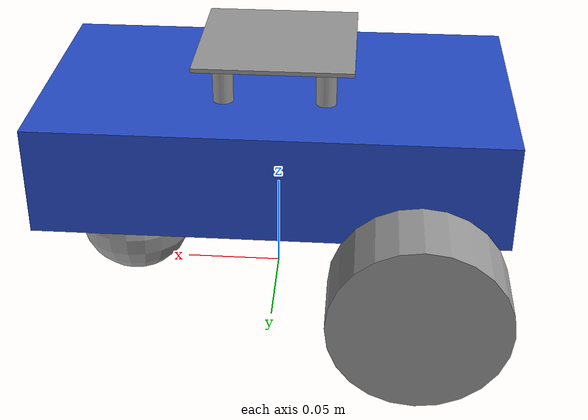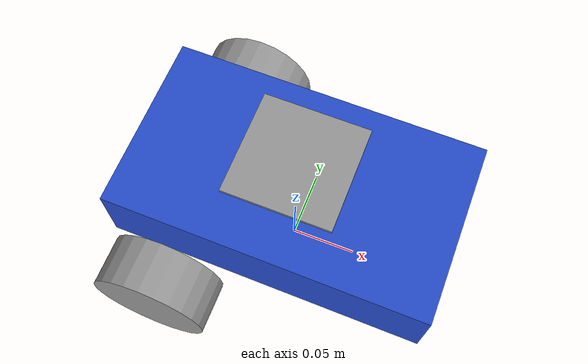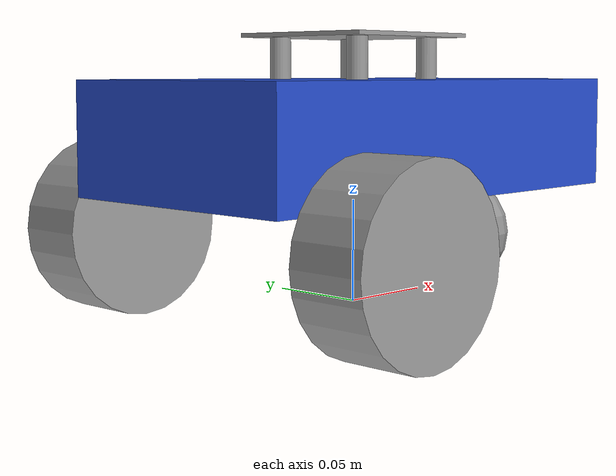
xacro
<?xml version="1.0"?>
<robot xmlns:xacro="http://www.ros.org/wiki/xacro">

    <xacro:property name="base_length" value="0.231" />
    <xacro:property name="base_width" value="0.131" />
    <xacro:property name="base_height" value="0.054" />
    <xacro:property name="wheel_radius" value="0.043" />
    <xacro:property name="wheel_length" value="0.037" />
    <xacro:property name="caster_wheel_radius" value="0.0305" />

    <link name="base_footprint" />

    <link name="base_link">
        <visual>
            <geometry>
                <box size="${base_length} ${base_width} ${base_height}" />
            </geometry>01
            <origin xyz="0 0 ${base_height / 2.0}" rpy="0 0 0" />
            <material name="blue" />
        </visual>
        <collision>
            <geometry>
                <box size="${base_length} ${base_width} ${base_height}" />
            </geometry>
            <origin xyz="0 0 ${base_height / 2.0}" rpy="0 0 0" />
        </collision>
        <xacro:box_inertia m="5.0" x="${base_length}" y="${base_width}" z="${base_height}"
                           o_xyz="0 0 ${base_height / 2.0}" o_rpy="0 0 0" />
    </link>

    <xacro:macro name="wheel_link" params="prefix">
        <link name="${prefix}_wheel_link">
            <visual>
                <geometry>
                    <cylinder radius="${wheel_radius}" length="${wheel_length}" />
                </geometry>
                <origin xyz="0 0 0" rpy="${pi / 2.0} 0 0" />
                <material name="grey" />
            </visual>
            <collision>
                <geometry>
                    <sphere radius="${wheel_radius}" />
                </geometry>
                <origin xyz="0 0 0" rpy="${pi / 2.0} 0 0" />
            </collision>
            <xacro:cylinder_inertia m="0.5" r="${wheel_radius}" l="${wheel_length}"
                           o_xyz="0 0 0" o_rpy="${pi / 2.0} 0 0" />
        </link>
    </xacro:macro>

    <xacro:wheel_link prefix="right" />
    <xacro:wheel_link prefix="left" />

    <link name="caster_wheel_link">
        <visual>
            <geometry>
                <sphere radius="${caster_wheel_radius}" />
            </geometry>
            <origin xyz="0 0 0" rpy="0 0 0" />
            <material name="grey" />
        </visual>
        <collision>
            <geometry>
                <sphere radius="${caster_wheel_radius}" />
            </geometry>
            <origin xyz="0 0 0" rpy="0 0 0" />
        </collision>
        <xacro:sphere_inertia m="0.5" r="${caster_wheel_radius}"
                           o_xyz="0 0 0" o_rpy="0 0 0" />
    </link>

    <link name="camera_link"/>

    <xacro:macro name="cylinder_link" params="prefix">
        <link name="${prefix}_cylinder_link">
            <visual>
                <geometry>
                    <cylinder radius="0.005" length="0.02" />
                </geometry>
                <origin xyz="0 0 0.01" rpy="0 0 0" />
                <material name="grey" />
            </visual>
            <collision>
                <geometry>
                    <cylinder radius="0.005" length="0.02" />
                </geometry>
                <origin xyz="0 0 0.01" rpy="0 0 0" />
            </collision>
            <xacro:cylinder_inertia m="0.1" r="0.005" l="0.02"
                           o_xyz="0 0 0.01" o_rpy="0 0 0" />
        </link>
    </xacro:macro>

    <xacro:cylinder_link prefix="r1" />
    <xacro:cylinder_link prefix="l1" />
    <xacro:cylinder_link prefix="r2" />
    <xacro:cylinder_link prefix="l2" />

    <link name="holder_link">
        <visual>
            <geometry>
                <box size="0.077 0.077 0.002" />
            </geometry>
            <origin xyz="0 0 0.001" rpy="0 0 0" />
            <material name="grey" />
        </visual>
        <collision>
            <geometry>
                <box size="0.077 0.077 0.002" />
            </geometry>
            <origin xyz="0 0 0.001" rpy="0 0 0" />
        </collision>
        <xacro:box_inertia m="0.2" x="0.077" y="0.077" z="0.002"
                           o_xyz="0 0 0.001" o_rpy="0 0 0" />
    </link>

    <joint name="base_joint" type="fixed">
        <parent link="base_footprint" />
        <child link="base_link" />
        <origin xyz="0 0 0.055" rpy="0 0 0"/>
    </joint>

    <joint name="base_right_wheel_joint" type="continuous">
        <parent link="base_link" />
        <child link="right_wheel_link" />
        <origin xyz="-0.072 -0.09 -0.018" rpy="0 0 0" />
        <axis xyz="0 1 0" />
    </joint>

    <joint name="base_left_wheel_joint" type="continuous">
        <parent link="base_link" />
        <child link="left_wheel_link" />
        <origin xyz="-0.072 0.09 -0.018" rpy="0 0 0" />
        <axis xyz="0 1 0" />
    </joint>

    <joint name="base_caster_wheel_joint" type="fixed">
        <parent link="base_link" />
        <child link="caster_wheel_link" />
        <origin xyz="0.0775 0 -0.0275" rpy="0 0 0" />
    </joint>

    <joint name="base_camera_joint" type="fixed">
        <parent link="base_link" />
        <child link="camera_link" />
        <origin xyz="${base_length / 2.0} 0 ${base_height}" rpy="0 -0.5 0" />
    </joint>

    <joint name="base_l1_cylinder_joint" type="fixed">
        <parent link="base_link" />
        <child link="l1_cylinder_link" />
        <origin xyz="0.025 0.025 ${base_height}" rpy="0 0 0" />
    </joint>

    <joint name="base_r1_cylinder_joint" type="fixed">
        <parent link="base_link" />
        <child link="r1_cylinder_link" />
        <origin xyz="0.025 -0.025 ${base_height}" rpy="0 0 0" />
    </joint>

    <joint name="base_l2_cylinder_joint" type="fixed">
        <parent link="base_link" />
        <child link="l2_cylinder_link" />
        <origin xyz="-0.025 0.025 ${base_height}" rpy="0 0 0" />
    </joint>

    <joint name="base_r2_cylinder_joint" type="fixed">
        <parent link="base_link" />
        <child link="r2_cylinder_link" />
        <origin xyz="-0.025 -0.025 ${base_height}" rpy="0 0 0" />
    </joint>

    <joint name="base_holder_joint" type="fixed">
        <parent link="base_link" />
        <child link="holder_link" />
        <origin xyz="0 0 ${base_height + 0.020}" rpy="0 0 0" />
    </joint>

    <gazebo reference="caster_wheel_link">
        <mu1 value="0.1" />
        <mu2 value="0.1" />
    </gazebo>

</robot>
